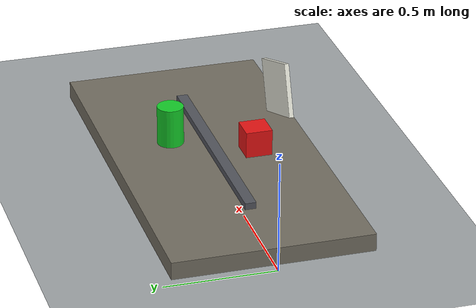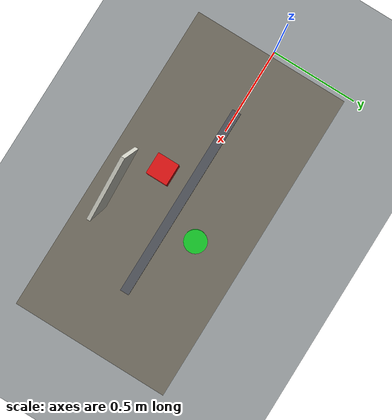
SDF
<?xml version="1.0"?>
<sdf version="1.7">
  <world name="robot_lab">
    <gravity>0 0 -9.8</gravity>
    <magnetic_field>0 0 0</magnetic_field>
    <atmosphere type="adiabatic"/>

    <physics name="physics" type="dart">
      <max_step_size>0.001</max_step_size>
      <real_time_factor>1.0</real_time_factor>
    </physics>

    <plugin filename="gz-sim-physics-system" name="gz::sim::systems::Physics"/>
    <plugin filename="gz-sim-sensors-system" name="gz::sim::systems::Sensors">
      <render_engine>ogre2</render_engine>
    </plugin>
    <plugin filename="gz-sim-imu-system" name="gz::sim::systems::Imu"/>
    <plugin filename="gz-sim-user-commands-system" name="gz::sim::systems::UserCommands"/>
    <plugin filename="gz-sim-scene-broadcaster-system" name="gz::sim::systems::SceneBroadcaster"/>

    <scene>
      <ambient>0.75 0.75 0.75</ambient>
      <background>0.78 0.80 0.82</background>
      <grid>true</grid>
    </scene>

    <gui fullscreen="0">
      <plugin filename="MinimalScene" name="3D View">
        <gz-gui>
          <title>3D View</title>
          <property type="bool" key="showTitleBar">false</property>
          <property type="string" key="state">docked</property>
        </gz-gui>
        <engine>ogre2</engine>
        <scene>scene</scene>
        <ambient_light>0.55 0.55 0.55</ambient_light>
        <background_color>0.78 0.80 0.82</background_color>
        <camera_pose>-3.6 -1.8 2.4 0 0.45 0.45</camera_pose>
        <camera_clip>
          <near>0.05</near>
          <far>25000</far>
        </camera_clip>
      </plugin>
      <plugin filename="EntityContextMenuPlugin" name="Entity context menu">
        <gz-gui>
          <property type="bool" key="showTitleBar">false</property>
          <property type="bool" key="resizable">false</property>
          <property type="double" key="width">5</property>
          <property type="double" key="height">5</property>
          <property type="string" key="state">floating</property>
        </gz-gui>
      </plugin>
      <plugin filename="GzSceneManager" name="Scene Manager">
        <gz-gui>
          <property type="bool" key="showTitleBar">false</property>
          <property type="bool" key="resizable">false</property>
          <property type="double" key="width">5</property>
          <property type="double" key="height">5</property>
          <property type="string" key="state">floating</property>
        </gz-gui>
      </plugin>
      <plugin filename="InteractiveViewControl" name="Interactive view control">
        <gz-gui>
          <property type="bool" key="showTitleBar">false</property>
          <property type="bool" key="resizable">false</property>
          <property type="double" key="width">5</property>
          <property type="double" key="height">5</property>
          <property type="string" key="state">floating</property>
        </gz-gui>
      </plugin>
      <plugin filename="CameraTracking" name="Camera Tracking">
        <gz-gui>
          <property type="bool" key="showTitleBar">false</property>
          <property type="bool" key="resizable">false</property>
          <property type="double" key="width">5</property>
          <property type="double" key="height">5</property>
          <property type="string" key="state">floating</property>
        </gz-gui>
      </plugin>
      <plugin filename="MarkerManager" name="Marker manager">
        <gz-gui>
          <property type="bool" key="showTitleBar">false</property>
          <property type="bool" key="resizable">false</property>
          <property type="double" key="width">5</property>
          <property type="double" key="height">5</property>
          <property type="string" key="state">floating</property>
        </gz-gui>
      </plugin>
      <plugin filename="EntityTree" name="Entity tree">
        <gz-gui>
          <property type="string" key="state">docked</property>
        </gz-gui>
      </plugin>
      <plugin filename="ComponentInspector" name="Component inspector">
        <gz-gui>
          <property type="string" key="state">docked</property>
        </gz-gui>
      </plugin>
      <plugin filename="WorldControl" name="World control">
        <gz-gui>
          <title>World control</title>
          <property type="bool" key="showTitleBar">false</property>
          <property type="double" key="height">72</property>
          <property type="double" key="width">121</property>
          <property type="string" key="state">floating</property>
        </gz-gui>
        <play_pause>true</play_pause>
        <step>true</step>
        <start_paused>false</start_paused>
        <use_event>true</use_event>
      </plugin>
      <plugin filename="WorldStats" name="World stats">
        <gz-gui>
          <title>World stats</title>
          <property type="bool" key="showTitleBar">false</property>
          <property type="double" key="height">110</property>
          <property type="double" key="width">290</property>
          <property type="string" key="state">floating</property>
        </gz-gui>
        <sim_time>true</sim_time>
        <real_time>true</real_time>
        <real_time_factor>true</real_time_factor>
        <iterations>true</iterations>
      </plugin>
    </gui>

    <light type="directional" name="sun">
      <cast_shadows>true</cast_shadows>
      <pose>0 0 8 0 0 0</pose>
      <diffuse>0.85 0.85 0.82 1</diffuse>
      <specular>0.2 0.2 0.2 1</specular>
      <attenuation>
        <range>1000</range>
        <constant>0.9</constant>
        <linear>0.01</linear>
        <quadratic>0.001</quadratic>
      </attenuation>
      <direction>-0.45 0.2 -0.86</direction>
    </light>

    <model name="ground_plane">
      <static>true</static>
      <link name="link">
        <collision name="collision">
          <geometry>
            <plane>
              <normal>0 0 1</normal>
              <size>40 40</size>
            </plane>
          </geometry>
        </collision>
        <visual name="visual">
          <geometry>
            <plane>
              <normal>0 0 1</normal>
              <size>40 40</size>
            </plane>
          </geometry>
          <material>
            <ambient>0.62 0.64 0.65 1</ambient>
            <diffuse>0.62 0.64 0.65 1</diffuse>
          </material>
        </visual>
      </link>
    </model>

    <model name="work_table">
      <static>true</static>
      <pose>0.95 0 0.04 0 0 0</pose>
      <link name="link">
        <collision name="collision">
          <geometry>
            <box>
              <size>1.8 0.9 0.08</size>
            </box>
          </geometry>
        </collision>
        <visual name="visual">
          <geometry>
            <box>
              <size>1.8 0.9 0.08</size>
            </box>
          </geometry>
          <material>
            <ambient>0.26 0.25 0.23 1</ambient>
            <diffuse>0.45 0.43 0.38 1</diffuse>
          </material>
        </visual>
      </link>
    </model>

    <model name="test_beam">
      <static>true</static>
      <pose>0.95 0 0.10 0 0 0</pose>
      <link name="link">
        <collision name="collision">
          <geometry>
            <box>
              <size>1.1 0.05 0.03</size>
            </box>
          </geometry>
        </collision>
        <visual name="visual">
          <geometry>
            <box>
              <size>1.1 0.05 0.03</size>
            </box>
          </geometry>
          <material>
            <ambient>0.14 0.15 0.16 1</ambient>
            <diffuse>0.32 0.33 0.36 1</diffuse>
          </material>
        </visual>
      </link>
    </model>

    <model name="calibration_board">
      <static>true</static>
      <pose>1.05 -0.32 0.32 0 0.35 0</pose>
      <link name="link">
        <visual name="visual">
          <geometry>
            <box>
              <size>0.36 0.02 0.24</size>
            </box>
          </geometry>
          <material>
            <ambient>0.9 0.9 0.85 1</ambient>
            <diffuse>0.9 0.9 0.85 1</diffuse>
          </material>
        </visual>
        <collision name="collision">
          <geometry>
            <box>
              <size>0.36 0.02 0.24</size>
            </box>
          </geometry>
        </collision>
      </link>
    </model>

    <model name="target_red_box">
      <static>true</static>
      <pose>0.86 -0.16 0.18 0 0 0</pose>
      <link name="link">
        <visual name="visual">
          <geometry>
            <box>
              <size>0.12 0.12 0.12</size>
            </box>
          </geometry>
          <material>
            <ambient>0.8 0.05 0.05 1</ambient>
            <diffuse>0.9 0.08 0.08 1</diffuse>
          </material>
        </visual>
        <collision name="collision">
          <geometry>
            <box>
              <size>0.12 0.12 0.12</size>
            </box>
          </geometry>
        </collision>
      </link>
    </model>

    <model name="target_green_cylinder">
      <static>true</static>
      <pose>1.08 0.17 0.19 0 0 0</pose>
      <link name="link">
        <visual name="visual">
          <geometry>
            <cylinder>
              <radius>0.06</radius>
              <length>0.18</length>
            </cylinder>
          </geometry>
          <material>
            <ambient>0.05 0.65 0.12 1</ambient>
            <diffuse>0.08 0.8 0.16 1</diffuse>
          </material>
        </visual>
        <collision name="collision">
          <geometry>
            <cylinder>
              <radius>0.06</radius>
              <length>0.18</length>
            </cylinder>
          </geometry>
        </collision>
      </link>
    </model>

  </world>
</sdf>
